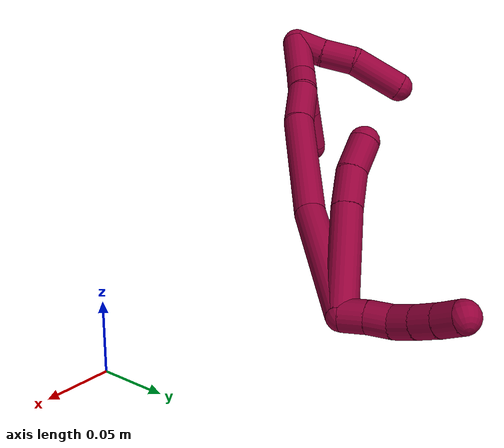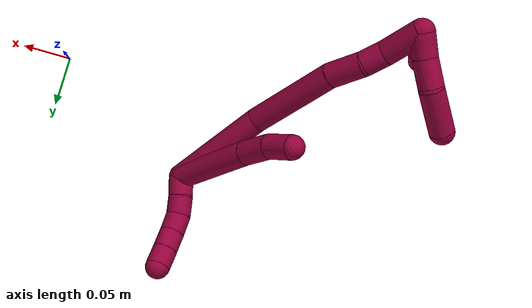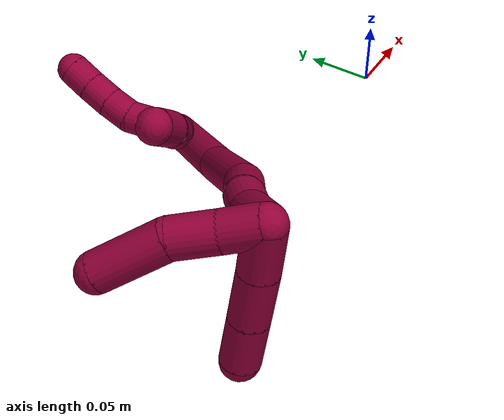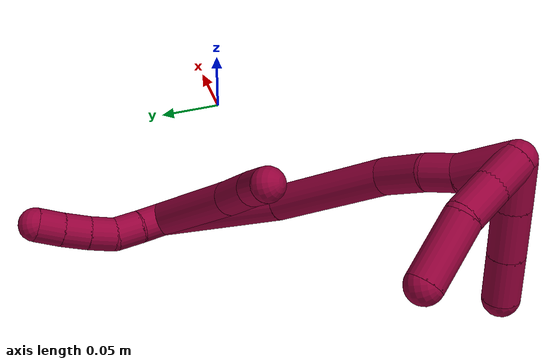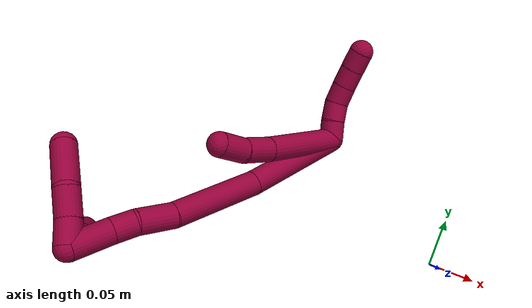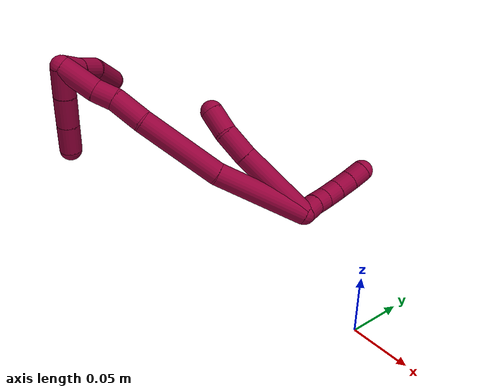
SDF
<sdf version="1.7">
 <world name="default">
  <model name="8">
   <static>0</static>
   <link name="8">
    <collision name="collision-cylinder-e_1_2_8">
     <pose>0.006383 0.011566 0.042332 -0.266705 0.14445 -0.019411</pose>
     <geometry><cylinder><radius>0.0125</radius><length>0.08869</length></cylinder></geometry>
     <surface>
      <friction><ode><mu>1.16</mu><mu2>1.16</mu2><slip1>0</slip1><slip2>0</slip2></ode></friction>
      <contact><ode><kp>1e+06</kp><kd>1</kd><max_vel>0</max_vel><min_depth>0.001</min_depth></ode></contact>
     </surface>
    </collision>
    <visual name="visual-cylinder-e_1_2_8">
     <pose>0.006383 0.011566 0.042332 -0.266705 0.14445 -0.019411</pose>
     <geometry><cylinder><radius>0.0125</radius><length>0.08869</length></cylinder></geometry>
     <material><ambient>0.584314 0 0.227451 1</ambient></material>
    </visual>
    <collision name="collision-cylinder-e_2_8_9">
     <pose>0.015815 0.028633 0.099669 -0.351459 0.188478 -0.033563</pose>
     <geometry><cylinder><radius>0.0125</radius><length>0.03254</length></cylinder></geometry>
     <surface>
      <friction><ode><mu>1.16</mu><mu2>1.16</mu2><slip1>0</slip1><slip2>0</slip2></ode></friction>
      <contact><ode><kp>1e+06</kp><kd>1</kd><max_vel>0</max_vel><min_depth>0.001</min_depth></ode></contact>
     </surface>
    </collision>
    <visual name="visual-cylinder-e_2_8_9">
     <pose>0.015815 0.028633 0.099669 -0.351459 0.188478 -0.033563</pose>
     <geometry><cylinder><radius>0.0125</radius><length>0.03254</length></cylinder></geometry>
     <material><ambient>0.584314 0 0.227451 1</ambient></material>
    </visual>
    <collision name="collision-cylinder-e_3_9_6">
     <pose>0.020924 0.041983 0.126552 -0.58382 0.143736 -0.04326</pose>
     <geometry><cylinder><radius>0.0125</radius><length>0.028769</length></cylinder></geometry>
     <surface>
      <friction><ode><mu>1.16</mu><mu2>1.16</mu2><slip1>0</slip1><slip2>0</slip2></ode></friction>
      <contact><ode><kp>1e+06</kp><kd>1</kd><max_vel>0</max_vel><min_depth>0.001</min_depth></ode></contact>
     </surface>
    </collision>
    <visual name="visual-cylinder-e_3_9_6">
     <pose>0.020924 0.041983 0.126552 -0.58382 0.143736 -0.04326</pose>
     <geometry><cylinder><radius>0.0125</radius><length>0.028769</length></cylinder></geometry>
     <material><ambient>0.584314 0 0.227451 1</ambient></material>
    </visual>
    <collision name="collision-cylinder-e_1_2_10">
     <pose>0.000262 0.009046 -0.004254 -2.01033 0.02622 -0.041299</pose>
     <geometry><cylinder><radius>0.0125</radius><length>0.02</length></cylinder></geometry>
     <surface>
      <friction><ode><mu>1.16</mu><mu2>1.16</mu2><slip1>0</slip1><slip2>0</slip2></ode></friction>
      <contact><ode><kp>1e+06</kp><kd>1</kd><max_vel>0</max_vel><min_depth>0.001</min_depth></ode></contact>
     </surface>
    </collision>
    <visual name="visual-cylinder-e_1_2_10">
     <pose>0.000262 0.009046 -0.004254 -2.01033 0.02622 -0.041299</pose>
     <geometry><cylinder><radius>0.0125</radius><length>0.02</length></cylinder></geometry>
     <material><ambient>0.584314 0 0.227451 1</ambient></material>
    </visual>
    <collision name="collision-cylinder-e_2_10_11">
     <pose>0.000863 0.026552 -0.01383 -2.1324 0.033872 -0.061316</pose>
     <geometry><cylinder><radius>0.0125</radius><length>0.02</length></cylinder></geometry>
     <surface>
      <friction><ode><mu>1.16</mu><mu2>1.16</mu2><slip1>0</slip1><slip2>0</slip2></ode></friction>
      <contact><ode><kp>1e+06</kp><kd>1</kd><max_vel>0</max_vel><min_depth>0.001</min_depth></ode></contact>
     </surface>
    </collision>
    <visual name="visual-cylinder-e_2_10_11">
     <pose>0.000863 0.026552 -0.01383 -2.1324 0.033872 -0.061316</pose>
     <geometry><cylinder><radius>0.0125</radius><length>0.02</length></cylinder></geometry>
     <material><ambient>0.584314 0 0.227451 1</ambient></material>
    </visual>
    <collision name="collision-cylinder-e_3_11_12">
     <pose>0.004899 0.042729 -0.024325 -2.16125 0.37877 -0.689726</pose>
     <geometry><cylinder><radius>0.0125</radius><length>0.02</length></cylinder></geometry>
     <surface>
      <friction><ode><mu>1.16</mu><mu2>1.16</mu2><slip1>0</slip1><slip2>0</slip2></ode></friction>
      <contact><ode><kp>1e+06</kp><kd>1</kd><max_vel>0</max_vel><min_depth>0.001</min_depth></ode></contact>
     </surface>
    </collision>
    <visual name="visual-cylinder-e_3_11_12">
     <pose>0.004899 0.042729 -0.024325 -2.16125 0.37877 -0.689726</pose>
     <geometry><cylinder><radius>0.0125</radius><length>0.02</length></cylinder></geometry>
     <material><ambient>0.584314 0 0.227451 1</ambient></material>
    </visual>
    <collision name="collision-cylinder-e_4_12_13">
     <pose>0.012952 0.057984 -0.034421 -2.14943 0.450519 -0.801007</pose>
     <geometry><cylinder><radius>0.0125</radius><length>0.02</length></cylinder></geometry>
     <surface>
      <friction><ode><mu>1.16</mu><mu2>1.16</mu2><slip1>0</slip1><slip2>0</slip2></ode></friction>
      <contact><ode><kp>1e+06</kp><kd>1</kd><max_vel>0</max_vel><min_depth>0.001</min_depth></ode></contact>
     </surface>
    </collision>
    <visual name="visual-cylinder-e_4_12_13">
     <pose>0.012952 0.057984 -0.034421 -2.14943 0.450519 -0.801007</pose>
     <geometry><cylinder><radius>0.0125</radius><length>0.02</length></cylinder></geometry>
     <material><ambient>0.584314 0 0.227451 1</ambient></material>
    </visual>
    <collision name="collision-cylinder-e_5_13_5">
     <pose>0.022149 0.072987 -0.043905 -2.11914 0.505559 -0.863038</pose>
     <geometry><cylinder><radius>0.0125</radius><length>0.02</length></cylinder></geometry>
     <surface>
      <friction><ode><mu>1.16</mu><mu2>1.16</mu2><slip1>0</slip1><slip2>0</slip2></ode></friction>
      <contact><ode><kp>1e+06</kp><kd>1</kd><max_vel>0</max_vel><min_depth>0.001</min_depth></ode></contact>
     </surface>
    </collision>
    <visual name="visual-cylinder-e_5_13_5">
     <pose>0.022149 0.072987 -0.043905 -2.11914 0.505559 -0.863038</pose>
     <geometry><cylinder><radius>0.0125</radius><length>0.02</length></cylinder></geometry>
     <material><ambient>0.584314 0 0.227451 1</ambient></material>
    </visual>
    <collision name="collision-cylinder-e_1_2_14">
     <pose>-0.001084 -0.003109 0.052034 0.059686 -0.020799 -0.000621</pose>
     <geometry><cylinder><radius>0.0125</radius><length>0.104275</length></cylinder></geometry>
     <surface>
      <friction><ode><mu>1.16</mu><mu2>1.16</mu2><slip1>0</slip1><slip2>0</slip2></ode></friction>
      <contact><ode><kp>1e+06</kp><kd>1</kd><max_vel>0</max_vel><min_depth>0.001</min_depth></ode></contact>
     </surface>
    </collision>
    <visual name="visual-cylinder-e_1_2_14">
     <pose>-0.001084 -0.003109 0.052034 0.059686 -0.020799 -0.000621</pose>
     <geometry><cylinder><radius>0.0125</radius><length>0.104275</length></cylinder></geometry>
     <material><ambient>0.584314 0 0.227451 1</ambient></material>
    </visual>
    <collision name="collision-cylinder-e_2_14_15">
     <pose>0.002272 -0.002051 0.151039 -0.088489 0.093887 -0.00416</pose>
     <geometry><cylinder><radius>0.0125</radius><length>0.094729</length></cylinder></geometry>
     <surface>
      <friction><ode><mu>1.16</mu><mu2>1.16</mu2><slip1>0</slip1><slip2>0</slip2></ode></friction>
      <contact><ode><kp>1e+06</kp><kd>1</kd><max_vel>0</max_vel><min_depth>0.001</min_depth></ode></contact>
     </surface>
    </collision>
    <visual name="visual-cylinder-e_2_14_15">
     <pose>0.002272 -0.002051 0.151039 -0.088489 0.093887 -0.00416</pose>
     <geometry><cylinder><radius>0.0125</radius><length>0.094729</length></cylinder></geometry>
     <material><ambient>0.584314 0 0.227451 1</ambient></material>
    </visual>
    <collision name="collision-cylinder-e_3_15_16">
     <pose>0.006861 0.006831 0.215706 -0.260371 0.008131 -0.001065</pose>
     <geometry><cylinder><radius>0.0125</radius><length>0.036628</length></cylinder></geometry>
     <surface>
      <friction><ode><mu>1.16</mu><mu2>1.16</mu2><slip1>0</slip1><slip2>0</slip2></ode></friction>
      <contact><ode><kp>1e+06</kp><kd>1</kd><max_vel>0</max_vel><min_depth>0.001</min_depth></ode></contact>
     </surface>
    </collision>
    <visual name="visual-cylinder-e_3_15_16">
     <pose>0.006861 0.006831 0.215706 -0.260371 0.008131 -0.001065</pose>
     <geometry><cylinder><radius>0.0125</radius><length>0.036628</length></cylinder></geometry>
     <material><ambient>0.584314 0 0.227451 1</ambient></material>
    </visual>
    <collision name="collision-cylinder-e_4_16_17">
     <pose>0.005359 0.01234 0.244723 -0.070104 -0.144465 0.005075</pose>
     <geometry><cylinder><radius>0.0125</radius><length>0.022937</length></cylinder></geometry>
     <surface>
      <friction><ode><mu>1.16</mu><mu2>1.16</mu2><slip1>0</slip1><slip2>0</slip2></ode></friction>
      <contact><ode><kp>1e+06</kp><kd>1</kd><max_vel>0</max_vel><min_depth>0.001</min_depth></ode></contact>
     </surface>
    </collision>
    <visual name="visual-cylinder-e_4_16_17">
     <pose>0.005359 0.01234 0.244723 -0.070104 -0.144465 0.005075</pose>
     <geometry><cylinder><radius>0.0125</radius><length>0.022937</length></cylinder></geometry>
     <material><ambient>0.584314 0 0.227451 1</ambient></material>
    </visual>
    <collision name="collision-cylinder-e_5_17_1">
     <pose>0.005472 0.015009 0.276599 -0.090901 0.085278 -0.003881</pose>
     <geometry><cylinder><radius>0.0125</radius><length>0.041431</length></cylinder></geometry>
     <surface>
      <friction><ode><mu>1.16</mu><mu2>1.16</mu2><slip1>0</slip1><slip2>0</slip2></ode></friction>
      <contact><ode><kp>1e+06</kp><kd>1</kd><max_vel>0</max_vel><min_depth>0.001</min_depth></ode></contact>
     </surface>
    </collision>
    <visual name="visual-cylinder-e_5_17_1">
     <pose>0.005472 0.015009 0.276599 -0.090901 0.085278 -0.003881</pose>
     <geometry><cylinder><radius>0.0125</radius><length>0.041431</length></cylinder></geometry>
     <material><ambient>0.584314 0 0.227451 1</ambient></material>
    </visual>
    <collision name="collision-cylinder-e_1_1_18">
     <pose>-0.007351 0.014033 0.290669 2.72762 -1.11877 -2.49437</pose>
     <geometry><cylinder><radius>0.0125</radius><length>0.032433</length></cylinder></geometry>
     <surface>
      <friction><ode><mu>1.16</mu><mu2>1.16</mu2><slip1>0</slip1><slip2>0</slip2></ode></friction>
      <contact><ode><kp>1e+06</kp><kd>1</kd><max_vel>0</max_vel><min_depth>0.001</min_depth></ode></contact>
     </surface>
    </collision>
    <visual name="visual-cylinder-e_1_1_18">
     <pose>-0.007351 0.014033 0.290669 2.72762 -1.11877 -2.49437</pose>
     <geometry><cylinder><radius>0.0125</radius><length>0.032433</length></cylinder></geometry>
     <material><ambient>0.584314 0 0.227451 1</ambient></material>
    </visual>
    <collision name="collision-cylinder-e_2_18_19">
     <pose>-0.037734 0.008779 0.277271 2.80678 -1.13683 -2.62432</pose>
     <geometry><cylinder><radius>0.0125</radius><length>0.034818</length></cylinder></geometry>
     <surface>
      <friction><ode><mu>1.16</mu><mu2>1.16</mu2><slip1>0</slip1><slip2>0</slip2></ode></friction>
      <contact><ode><kp>1e+06</kp><kd>1</kd><max_vel>0</max_vel><min_depth>0.001</min_depth></ode></contact>
     </surface>
    </collision>
    <visual name="visual-cylinder-e_2_18_19">
     <pose>-0.037734 0.008779 0.277271 2.80678 -1.13683 -2.62432</pose>
     <geometry><cylinder><radius>0.0125</radius><length>0.034818</length></cylinder></geometry>
     <material><ambient>0.584314 0 0.227451 1</ambient></material>
    </visual>
    <collision name="collision-cylinder-e_3_19_4">
     <pose>-0.068359 0.004144 0.263782 2.81474 -1.13296 -2.63423</pose>
     <geometry><cylinder><radius>0.0125</radius><length>0.032749</length></cylinder></geometry>
     <surface>
      <friction><ode><mu>1.16</mu><mu2>1.16</mu2><slip1>0</slip1><slip2>0</slip2></ode></friction>
      <contact><ode><kp>1e+06</kp><kd>1</kd><max_vel>0</max_vel><min_depth>0.001</min_depth></ode></contact>
     </surface>
    </collision>
    <visual name="visual-cylinder-e_3_19_4">
     <pose>-0.068359 0.004144 0.263782 2.81474 -1.13296 -2.63423</pose>
     <geometry><cylinder><radius>0.0125</radius><length>0.032749</length></cylinder></geometry>
     <material><ambient>0.584314 0 0.227451 1</ambient></material>
    </visual>
    <collision name="collision-cylinder-e_1_1_20">
     <pose>0.002352 0.026719 0.291313 -2.10664 -0.403581 0.690041</pose>
     <geometry><cylinder><radius>0.0125</radius><length>0.024879</length></cylinder></geometry>
     <surface>
      <friction><ode><mu>1.16</mu><mu2>1.16</mu2><slip1>0</slip1><slip2>0</slip2></ode></friction>
      <contact><ode><kp>1e+06</kp><kd>1</kd><max_vel>0</max_vel><min_depth>0.001</min_depth></ode></contact>
     </surface>
    </collision>
    <visual name="visual-cylinder-e_1_1_20">
     <pose>0.002352 0.026719 0.291313 -2.10664 -0.403581 0.690041</pose>
     <geometry><cylinder><radius>0.0125</radius><length>0.024879</length></cylinder></geometry>
     <material><ambient>0.584314 0 0.227451 1</ambient></material>
    </visual>
    <collision name="collision-cylinder-e_2_20_21">
     <pose>-0.007575 0.048929 0.280151 -1.97697 -0.35812 0.536498</pose>
     <geometry><cylinder><radius>0.0125</radius><length>0.028764</length></cylinder></geometry>
     <surface>
      <friction><ode><mu>1.16</mu><mu2>1.16</mu2><slip1>0</slip1><slip2>0</slip2></ode></friction>
      <contact><ode><kp>1e+06</kp><kd>1</kd><max_vel>0</max_vel><min_depth>0.001</min_depth></ode></contact>
     </surface>
    </collision>
    <visual name="visual-cylinder-e_2_20_21">
     <pose>-0.007575 0.048929 0.280151 -1.97697 -0.35812 0.536498</pose>
     <geometry><cylinder><radius>0.0125</radius><length>0.028764</length></cylinder></geometry>
     <material><ambient>0.584314 0 0.227451 1</ambient></material>
    </visual>
    <collision name="collision-cylinder-e_3_21_3">
     <pose>-0.026952 0.077022 0.265631 -2.10021 -0.66686 1.08666</pose>
     <geometry><cylinder><radius>0.0125</radius><length>0.046358</length></cylinder></geometry>
     <surface>
      <friction><ode><mu>1.16</mu><mu2>1.16</mu2><slip1>0</slip1><slip2>0</slip2></ode></friction>
      <contact><ode><kp>1e+06</kp><kd>1</kd><max_vel>0</max_vel><min_depth>0.001</min_depth></ode></contact>
     </surface>
    </collision>
    <visual name="visual-cylinder-e_3_21_3">
     <pose>-0.026952 0.077022 0.265631 -2.10021 -0.66686 1.08666</pose>
     <geometry><cylinder><radius>0.0125</radius><length>0.046358</length></cylinder></geometry>
     <material><ambient>0.584314 0 0.227451 1</ambient></material>
    </visual>
    <collision name="collision-sphere-3">
     <pose>-0.041289 0.092742 0.256433 0 -0 0</pose>
     <geometry><sphere><radius>0.0125</radius></sphere></geometry>
     <surface>
      <friction><ode><mu>1.16</mu><mu2>1.16</mu2><slip1>0</slip1><slip2>0</slip2></ode></friction>
      <contact><ode><kp>1e+06</kp><kd>1</kd><max_vel>0</max_vel><min_depth>0.001</min_depth></ode></contact>
     </surface>
    </collision>
    <visual name="visual-sphere-3">
     <pose>-0.041289 0.092742 0.256433 0 -0 0</pose>
     <geometry><sphere><radius>0.0125</radius></sphere></geometry>
     <material><ambient>0.584314 0 0.227451 1</ambient></material>
    </visual>
    <collision name="collision-sphere-21">
     <pose>-0.012616 0.061303 0.274829 0 -0 0</pose>
     <geometry><sphere><radius>0.0125</radius></sphere></geometry>
     <surface>
      <friction><ode><mu>1.16</mu><mu2>1.16</mu2><slip1>0</slip1><slip2>0</slip2></ode></friction>
      <contact><ode><kp>1e+06</kp><kd>1</kd><max_vel>0</max_vel><min_depth>0.001</min_depth></ode></contact>
     </surface>
    </collision>
    <visual name="visual-sphere-21">
     <pose>-0.012616 0.061303 0.274829 0 -0 0</pose>
     <geometry><sphere><radius>0.0125</radius></sphere></geometry>
     <material><ambient>0.584314 0 0.227451 1</ambient></material>
    </visual>
    <collision name="collision-sphere-20">
     <pose>-0.002533 0.036556 0.285472 0 -0 0</pose>
     <geometry><sphere><radius>0.0125</radius></sphere></geometry>
     <surface>
      <friction><ode><mu>1.16</mu><mu2>1.16</mu2><slip1>0</slip1><slip2>0</slip2></ode></friction>
      <contact><ode><kp>1e+06</kp><kd>1</kd><max_vel>0</max_vel><min_depth>0.001</min_depth></ode></contact>
     </surface>
    </collision>
    <visual name="visual-sphere-20">
     <pose>-0.002533 0.036556 0.285472 0 -0 0</pose>
     <geometry><sphere><radius>0.0125</radius></sphere></geometry>
     <material><ambient>0.584314 0 0.227451 1</ambient></material>
    </visual>
    <collision name="collision-sphere-4">
     <pose>-0.083189 0.001915 0.257207 0 -0 0</pose>
     <geometry><sphere><radius>0.0125</radius></sphere></geometry>
     <surface>
      <friction><ode><mu>1.16</mu><mu2>1.16</mu2><slip1>0</slip1><slip2>0</slip2></ode></friction>
      <contact><ode><kp>1e+06</kp><kd>1</kd><max_vel>0</max_vel><min_depth>0.001</min_depth></ode></contact>
     </surface>
    </collision>
    <visual name="visual-sphere-4">
     <pose>-0.083189 0.001915 0.257207 0 -0 0</pose>
     <geometry><sphere><radius>0.0125</radius></sphere></geometry>
     <material><ambient>0.584314 0 0.227451 1</ambient></material>
    </visual>
    <collision name="collision-sphere-11">
     <pose>0.001202 0.035011 -0.019152 0 -0 0</pose>
     <geometry><sphere><radius>0.0125</radius></sphere></geometry>
     <surface>
      <friction><ode><mu>1.16</mu><mu2>1.16</mu2><slip1>0</slip1><slip2>0</slip2></ode></friction>
      <contact><ode><kp>1e+06</kp><kd>1</kd><max_vel>0</max_vel><min_depth>0.001</min_depth></ode></contact>
     </surface>
    </collision>
    <visual name="visual-sphere-11">
     <pose>0.001202 0.035011 -0.019152 0 -0 0</pose>
     <geometry><sphere><radius>0.0125</radius></sphere></geometry>
     <material><ambient>0.584314 0 0.227451 1</ambient></material>
    </visual>
    <collision name="collision-sphere-10">
     <pose>0.000524 0.018093 -0.008507 0 -0 0</pose>
     <geometry><sphere><radius>0.0125</radius></sphere></geometry>
     <surface>
      <friction><ode><mu>1.16</mu><mu2>1.16</mu2><slip1>0</slip1><slip2>0</slip2></ode></friction>
      <contact><ode><kp>1e+06</kp><kd>1</kd><max_vel>0</max_vel><min_depth>0.001</min_depth></ode></contact>
     </surface>
    </collision>
    <visual name="visual-sphere-10">
     <pose>0.000524 0.018093 -0.008507 0 -0 0</pose>
     <geometry><sphere><radius>0.0125</radius></sphere></geometry>
     <material><ambient>0.584314 0 0.227451 1</ambient></material>
    </visual>
    <collision name="collision-sphere-6">
     <pose>0.022985 0.04983 0.13843 0 -0 0</pose>
     <geometry><sphere><radius>0.0125</radius></sphere></geometry>
     <surface>
      <friction><ode><mu>1.16</mu><mu2>1.16</mu2><slip1>0</slip1><slip2>0</slip2></ode></friction>
      <contact><ode><kp>1e+06</kp><kd>1</kd><max_vel>0</max_vel><min_depth>0.001</min_depth></ode></contact>
     </surface>
    </collision>
    <visual name="visual-sphere-6">
     <pose>0.022985 0.04983 0.13843 0 -0 0</pose>
     <geometry><sphere><radius>0.0125</radius></sphere></geometry>
     <material><ambient>0.584314 0 0.227451 1</ambient></material>
    </visual>
    <collision name="collision-sphere-9">
     <pose>0.018864 0.034135 0.114674 0 -0 0</pose>
     <geometry><sphere><radius>0.0125</radius></sphere></geometry>
     <surface>
      <friction><ode><mu>1.16</mu><mu2>1.16</mu2><slip1>0</slip1><slip2>0</slip2></ode></friction>
      <contact><ode><kp>1e+06</kp><kd>1</kd><max_vel>0</max_vel><min_depth>0.001</min_depth></ode></contact>
     </surface>
    </collision>
    <visual name="visual-sphere-9">
     <pose>0.018864 0.034135 0.114674 0 -0 0</pose>
     <geometry><sphere><radius>0.0125</radius></sphere></geometry>
     <material><ambient>0.584314 0 0.227451 1</ambient></material>
    </visual>
    <collision name="collision-sphere-2">
     <geometry><sphere><radius>0.0125</radius></sphere></geometry>
     <surface>
      <friction><ode><mu>1.16</mu><mu2>1.16</mu2><slip1>0</slip1><slip2>0</slip2></ode></friction>
      <contact><ode><kp>1e+06</kp><kd>1</kd><max_vel>0</max_vel><min_depth>0.001</min_depth></ode></contact>
     </surface>
    </collision>
    <visual name="visual-sphere-2">
     <geometry><sphere><radius>0.0125</radius></sphere></geometry>
     <material><ambient>0.584314 0 0.227451 1</ambient></material>
    </visual>
    <collision name="collision-sphere-19">
     <pose>-0.053529 0.006373 0.270357 0 -0 0</pose>
     <geometry><sphere><radius>0.0125</radius></sphere></geometry>
     <surface>
      <friction><ode><mu>1.16</mu><mu2>1.16</mu2><slip1>0</slip1><slip2>0</slip2></ode></friction>
      <contact><ode><kp>1e+06</kp><kd>1</kd><max_vel>0</max_vel><min_depth>0.001</min_depth></ode></contact>
     </surface>
    </collision>
    <visual name="visual-sphere-19">
     <pose>-0.053529 0.006373 0.270357 0 -0 0</pose>
     <geometry><sphere><radius>0.0125</radius></sphere></geometry>
     <material><ambient>0.584314 0 0.227451 1</ambient></material>
    </visual>
    <collision name="collision-sphere-8">
     <pose>0.012767 0.023131 0.084664 0 -0 0</pose>
     <geometry><sphere><radius>0.0125</radius></sphere></geometry>
     <surface>
      <friction><ode><mu>1.16</mu><mu2>1.16</mu2><slip1>0</slip1><slip2>0</slip2></ode></friction>
      <contact><ode><kp>1e+06</kp><kd>1</kd><max_vel>0</max_vel><min_depth>0.001</min_depth></ode></contact>
     </surface>
    </collision>
    <visual name="visual-sphere-8">
     <pose>0.012767 0.023131 0.084664 0 -0 0</pose>
     <geometry><sphere><radius>0.0125</radius></sphere></geometry>
     <material><ambient>0.584314 0 0.227451 1</ambient></material>
    </visual>
    <collision name="collision-sphere-12">
     <pose>0.008597 0.050447 -0.029498 0 -0 0</pose>
     <geometry><sphere><radius>0.0125</radius></sphere></geometry>
     <surface>
      <friction><ode><mu>1.16</mu><mu2>1.16</mu2><slip1>0</slip1><slip2>0</slip2></ode></friction>
      <contact><ode><kp>1e+06</kp><kd>1</kd><max_vel>0</max_vel><min_depth>0.001</min_depth></ode></contact>
     </surface>
    </collision>
    <visual name="visual-sphere-12">
     <pose>0.008597 0.050447 -0.029498 0 -0 0</pose>
     <geometry><sphere><radius>0.0125</radius></sphere></geometry>
     <material><ambient>0.584314 0 0.227451 1</ambient></material>
    </visual>
    <collision name="collision-sphere-13">
     <pose>0.017306 0.065521 -0.039344 0 -0 0</pose>
     <geometry><sphere><radius>0.0125</radius></sphere></geometry>
     <surface>
      <friction><ode><mu>1.16</mu><mu2>1.16</mu2><slip1>0</slip1><slip2>0</slip2></ode></friction>
      <contact><ode><kp>1e+06</kp><kd>1</kd><max_vel>0</max_vel><min_depth>0.001</min_depth></ode></contact>
     </surface>
    </collision>
    <visual name="visual-sphere-13">
     <pose>0.017306 0.065521 -0.039344 0 -0 0</pose>
     <geometry><sphere><radius>0.0125</radius></sphere></geometry>
     <material><ambient>0.584314 0 0.227451 1</ambient></material>
    </visual>
    <collision name="collision-sphere-5">
     <pose>0.026992 0.080454 -0.048465 0 -0 0</pose>
     <geometry><sphere><radius>0.0125</radius></sphere></geometry>
     <surface>
      <friction><ode><mu>1.16</mu><mu2>1.16</mu2><slip1>0</slip1><slip2>0</slip2></ode></friction>
      <contact><ode><kp>1e+06</kp><kd>1</kd><max_vel>0</max_vel><min_depth>0.001</min_depth></ode></contact>
     </surface>
    </collision>
    <visual name="visual-sphere-5">
     <pose>0.026992 0.080454 -0.048465 0 -0 0</pose>
     <geometry><sphere><radius>0.0125</radius></sphere></geometry>
     <material><ambient>0.584314 0 0.227451 1</ambient></material>
    </visual>
    <collision name="collision-sphere-14">
     <pose>-0.002169 -0.006219 0.104067 0 -0 0</pose>
     <geometry><sphere><radius>0.0125</radius></sphere></geometry>
     <surface>
      <friction><ode><mu>1.16</mu><mu2>1.16</mu2><slip1>0</slip1><slip2>0</slip2></ode></friction>
      <contact><ode><kp>1e+06</kp><kd>1</kd><max_vel>0</max_vel><min_depth>0.001</min_depth></ode></contact>
     </surface>
    </collision>
    <visual name="visual-sphere-14">
     <pose>-0.002169 -0.006219 0.104067 0 -0 0</pose>
     <geometry><sphere><radius>0.0125</radius></sphere></geometry>
     <material><ambient>0.584314 0 0.227451 1</ambient></material>
    </visual>
    <collision name="collision-sphere-15">
     <pose>0.006712 0.002116 0.19801 0 -0 0</pose>
     <geometry><sphere><radius>0.0125</radius></sphere></geometry>
     <surface>
      <friction><ode><mu>1.16</mu><mu2>1.16</mu2><slip1>0</slip1><slip2>0</slip2></ode></friction>
      <contact><ode><kp>1e+06</kp><kd>1</kd><max_vel>0</max_vel><min_depth>0.001</min_depth></ode></contact>
     </surface>
    </collision>
    <visual name="visual-sphere-15">
     <pose>0.006712 0.002116 0.19801 0 -0 0</pose>
     <geometry><sphere><radius>0.0125</radius></sphere></geometry>
     <material><ambient>0.584314 0 0.227451 1</ambient></material>
    </visual>
    <collision name="collision-sphere-16">
     <pose>0.00701 0.011545 0.233402 0 -0 0</pose>
     <geometry><sphere><radius>0.0125</radius></sphere></geometry>
     <surface>
      <friction><ode><mu>1.16</mu><mu2>1.16</mu2><slip1>0</slip1><slip2>0</slip2></ode></friction>
      <contact><ode><kp>1e+06</kp><kd>1</kd><max_vel>0</max_vel><min_depth>0.001</min_depth></ode></contact>
     </surface>
    </collision>
    <visual name="visual-sphere-16">
     <pose>0.00701 0.011545 0.233402 0 -0 0</pose>
     <geometry><sphere><radius>0.0125</radius></sphere></geometry>
     <material><ambient>0.584314 0 0.227451 1</ambient></material>
    </visual>
    <collision name="collision-sphere-17">
     <pose>0.003708 0.013135 0.256044 0 -0 0</pose>
     <geometry><sphere><radius>0.0125</radius></sphere></geometry>
     <surface>
      <friction><ode><mu>1.16</mu><mu2>1.16</mu2><slip1>0</slip1><slip2>0</slip2></ode></friction>
      <contact><ode><kp>1e+06</kp><kd>1</kd><max_vel>0</max_vel><min_depth>0.001</min_depth></ode></contact>
     </surface>
    </collision>
    <visual name="visual-sphere-17">
     <pose>0.003708 0.013135 0.256044 0 -0 0</pose>
     <geometry><sphere><radius>0.0125</radius></sphere></geometry>
     <material><ambient>0.584314 0 0.227451 1</ambient></material>
    </visual>
    <collision name="collision-sphere-1">
     <pose>0.007237 0.016882 0.297154 0 -0 0</pose>
     <geometry><sphere><radius>0.0125</radius></sphere></geometry>
     <surface>
      <friction><ode><mu>1.16</mu><mu2>1.16</mu2><slip1>0</slip1><slip2>0</slip2></ode></friction>
      <contact><ode><kp>1e+06</kp><kd>1</kd><max_vel>0</max_vel><min_depth>0.001</min_depth></ode></contact>
     </surface>
    </collision>
    <visual name="visual-sphere-1">
     <pose>0.007237 0.016882 0.297154 0 -0 0</pose>
     <geometry><sphere><radius>0.0125</radius></sphere></geometry>
     <material><ambient>0.584314 0 0.227451 1</ambient></material>
    </visual>
    <collision name="collision-sphere-18">
     <pose>-0.021938 0.011184 0.284184 0 -0 0</pose>
     <geometry><sphere><radius>0.0125</radius></sphere></geometry>
     <surface>
      <friction><ode><mu>1.16</mu><mu2>1.16</mu2><slip1>0</slip1><slip2>0</slip2></ode></friction>
      <contact><ode><kp>1e+06</kp><kd>1</kd><max_vel>0</max_vel><min_depth>0.001</min_depth></ode></contact>
     </surface>
    </collision>
    <visual name="visual-sphere-18">
     <pose>-0.021938 0.011184 0.284184 0 -0 0</pose>
     <geometry><sphere><radius>0.0125</radius></sphere></geometry>
     <material><ambient>0.584314 0 0.227451 1</ambient></material>
    </visual>
    <inertial>
     <pose>-0.002655 0.019369 0.144361 0 -0 0</pose>
     <mass>0.75</mass>
     <inertia>
      <ixx>0.00026</ixx>
      <ixy>0</ixy>
      <ixz>0</ixz>
      <iyy>0.000284</iyy>
      <iyz>0</iyz>
      <izz>-1.1e-05</izz>
     </inertia>
    </inertial>
   </link>
   <pose>-0.148652 0.085747 0.013354 0.556733 -0.984978 0.198028</pose>
  </model>
 </world>
</sdf>
